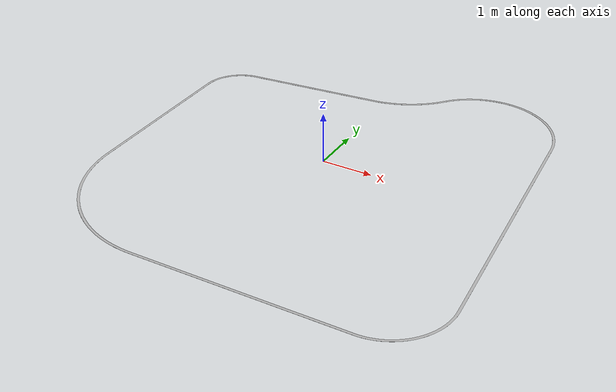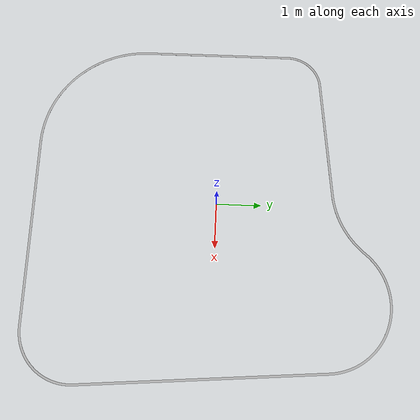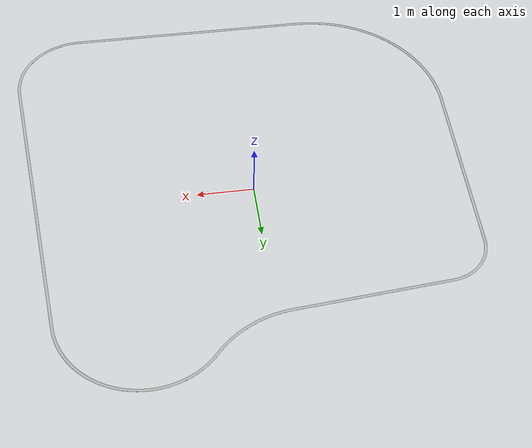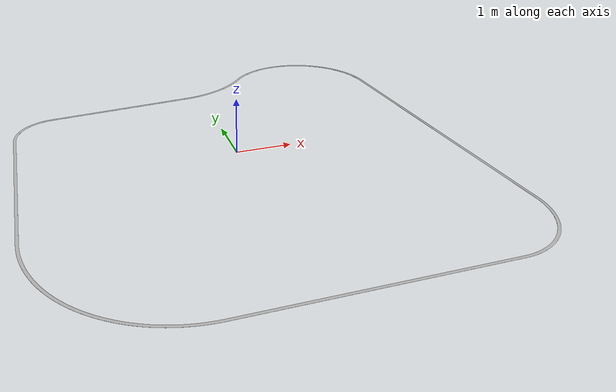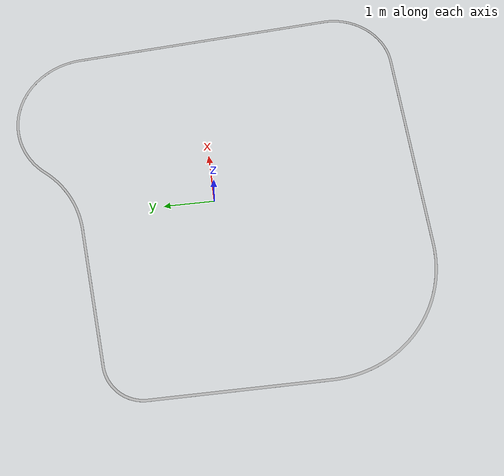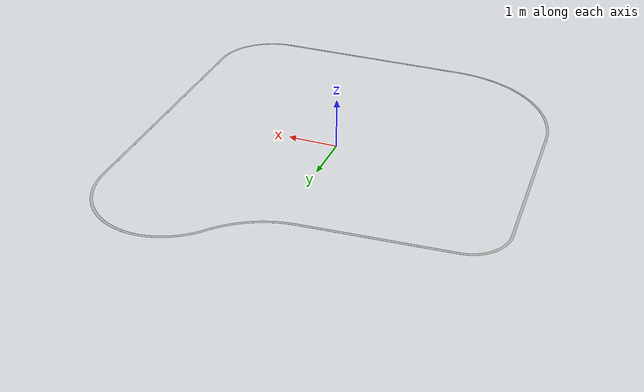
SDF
<?xml version="1.0" ?>
<sdf version="1.5">
  <model name="white_line">
    <static>true</static>
    <link name="link">
      <pose>0 0 0 0 0 0</pose>
      <collision name="collision">
        <geometry>
            <mesh>
              <uri>
                model://white_line/mesh/white_line.stl
              </uri>
              <scale>
                1 1 1
              </scale>
            </mesh>
        </geometry>
      </collision>
      <visual name="visual">
        <cast_shadows>false</cast_shadows>
        <geometry>
            <mesh>
              <uri>
                model://white_line/mesh/white_line.stl
              </uri>
              <scale>
                1 1 1
              </scale>
            </mesh>
        </geometry>
      </visual>
    </link>
  </model>
</sdf>
